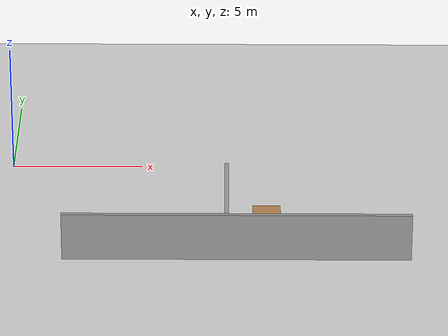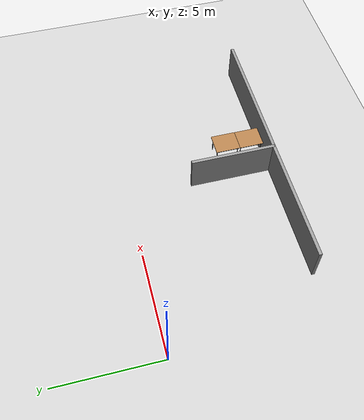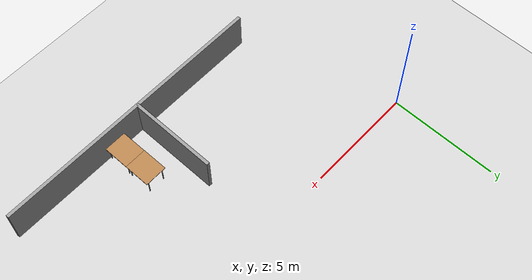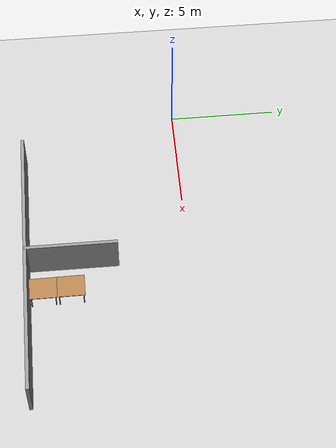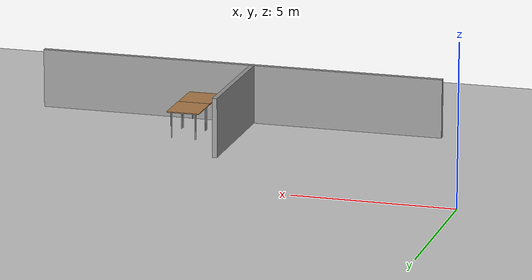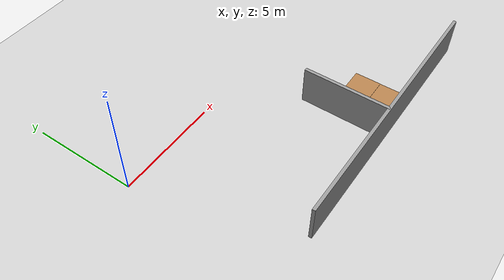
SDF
<sdf version="1.7">
 <world name="default">
  <model name="work_station">
   <link name="link">
    <inertial>
     <inertia><ixx>0</ixx><ixy>0</ixy><ixz>0</ixz><iyy>0</iyy><iyz>0</iyz><izz>0</izz></inertia>
     <mass>0</mass>
    </inertial>
    <visual name="back_right_leg">
     <pose>-0.53 -0.38 0.42 0 -0 0</pose>
     <geometry><cylinder><radius>0.0207459</radius><length>0.822541</length></cylinder></geometry>
     <material>
      <script><uri>file://media/materials/scripts/gazebo.material</uri><name>Gazebo/Grey</name></script>
      <shader type="pixel"><normal_map>__default__</normal_map></shader>
      <ambient>0.3 0.3 0.3 1</ambient>
      <diffuse>0.7 0.7 0.7 1</diffuse>
      <specular>0.01 0.01 0.01 1</specular>
      <emissive>0 0 0 1</emissive>
     </material>
    </visual>
    <visual name="back_left_leg">
     <pose>-0.53 0.38 0.42 0 -0 0</pose>
     <geometry><cylinder><radius>0.0207459</radius><length>0.822541</length></cylinder></geometry>
     <material>
      <script><uri>file://media/materials/scripts/gazebo.material</uri><name>Gazebo/Grey</name></script>
      <shader type="pixel"><normal_map>__default__</normal_map></shader>
      <ambient>0.3 0.3 0.3 1</ambient>
      <diffuse>0.7 0.7 0.7 1</diffuse>
      <specular>0.01 0.01 0.01 1</specular>
      <emissive>0 0 0 1</emissive>
     </material>
    </visual>
    <visual name="front_left_leg">
     <pose>0.53 0.38 0.42 0 -0 0</pose>
     <geometry><cylinder><radius>0.0207459</radius><length>0.822541</length></cylinder></geometry>
     <material>
      <script><uri>file://media/materials/scripts/gazebo.material</uri><name>Gazebo/Grey</name></script>
      <shader type="pixel"><normal_map>__default__</normal_map></shader>
      <ambient>0.3 0.3 0.3 1</ambient>
      <diffuse>0.7 0.7 0.7 1</diffuse>
      <specular>0.01 0.01 0.01 1</specular>
      <emissive>0 0 0 1</emissive>
     </material>
    </visual>
    <visual name="visual1">
     <pose>0 0 0.84 0 -0 0</pose>
     <geometry><box><size>1.21551 1.02942 0.025485</size></box></geometry>
     <material>
      <script><uri>file://media/materials/scripts/gazebo.material</uri><name>Gazebo/Wood</name></script>
      <shader type="pixel"><normal_map>__default__</normal_map></shader>
      <ambient>1 1 1 1</ambient>
      <diffuse>1 1 1 1</diffuse>
      <specular>0.2 0.2 0.2 1</specular>
      <emissive>0 0 0 1</emissive>
     </material>
    </visual>
    <visual name="front_right_leg">
     <pose>0.53 -0.38 0.42 0 -0 0</pose>
     <geometry><cylinder><radius>0.0207459</radius><length>0.822541</length></cylinder></geometry>
     <material>
      <script><uri>file://media/materials/scripts/gazebo.material</uri><name>Gazebo/Grey</name></script>
      <shader type="pixel"><normal_map>__default__</normal_map></shader>
      <ambient>0.3 0.3 0.3 1</ambient>
      <diffuse>0.7 0.7 0.7 1</diffuse>
      <specular>0.01 0.01 0.01 1</specular>
      <emissive>0 0 0 1</emissive>
     </material>
    </visual>
    <collision name="surface">
     <pose>0 0 0.84 0 -0 0</pose>
     <geometry><box><size>1.21551 1.02942 0.025485</size></box></geometry>
     <surface>
      <friction>
       <ode><mu>0.6</mu><mu2>0.6</mu2><fdir1>0 0 0</fdir1><slip1>0</slip1><slip2>0</slip2></ode>
       <torsional>
        <coefficient>1</coefficient>
        <patch_radius>0</patch_radius>
        <surface_radius>0</surface_radius>
        <use_patch_radius>1</use_patch_radius>
        <ode><slip>0</slip></ode>
       </torsional>
      </friction>
      <bounce><restitution_coefficient>0</restitution_coefficient><threshold>1e+06</threshold></bounce>
      <contact>
       <collide_without_contact>0</collide_without_contact>
       <collide_without_contact_bitmask>1</collide_without_contact_bitmask>
       <collide_bitmask>1</collide_bitmask>
       <ode>
        <soft_cfm>0</soft_cfm>
        <soft_erp>0.2</soft_erp>
        <kp>1e+13</kp>
        <kd>1</kd>
        <max_vel>0.01</max_vel>
        <min_depth>0</min_depth>
       </ode>
       <bullet>
        <split_impulse>1</split_impulse>
        <split_impulse_penetration_threshold>-0.01</split_impulse_penetration_threshold>
        <soft_cfm>0</soft_cfm>
        <soft_erp>0.2</soft_erp>
        <kp>1e+13</kp>
        <kd>1</kd>
       </bullet>
      </contact>
     </surface>
    </collision>
    <collision name="front_left_leg">
     <pose>0.53 0.38 0.42 0 -0 0</pose>
     <geometry><cylinder><radius>0.020746</radius><length>0.822541</length></cylinder></geometry>
     <surface>
      <friction>
       <ode><mu>1</mu><mu2>1</mu2><fdir1>0 0 0</fdir1><slip1>0</slip1><slip2>0</slip2></ode>
       <torsional>
        <coefficient>1</coefficient>
        <patch_radius>0</patch_radius>
        <surface_radius>0</surface_radius>
        <use_patch_radius>1</use_patch_radius>
        <ode><slip>0</slip></ode>
       </torsional>
      </friction>
      <bounce><restitution_coefficient>0</restitution_coefficient><threshold>1e+06</threshold></bounce>
      <contact>
       <collide_without_contact>0</collide_without_contact>
       <collide_without_contact_bitmask>1</collide_without_contact_bitmask>
       <collide_bitmask>1</collide_bitmask>
       <ode>
        <soft_cfm>0</soft_cfm>
        <soft_erp>0.2</soft_erp>
        <kp>1e+13</kp>
        <kd>1</kd>
        <max_vel>0.01</max_vel>
        <min_depth>0</min_depth>
       </ode>
       <bullet>
        <split_impulse>1</split_impulse>
        <split_impulse_penetration_threshold>-0.01</split_impulse_penetration_threshold>
        <soft_cfm>0</soft_cfm>
        <soft_erp>0.2</soft_erp>
        <kp>1e+13</kp>
        <kd>1</kd>
       </bullet>
      </contact>
     </surface>
    </collision>
    <collision name="front_right_leg">
     <pose>0.53 -0.38 0.42 0 -0 0</pose>
     <geometry><cylinder><radius>0.020746</radius><length>0.822541</length></cylinder></geometry>
     <surface>
      <friction>
       <ode><mu>1</mu><mu2>1</mu2><fdir1>0 0 0</fdir1><slip1>0</slip1><slip2>0</slip2></ode>
       <torsional>
        <coefficient>1</coefficient>
        <patch_radius>0</patch_radius>
        <surface_radius>0</surface_radius>
        <use_patch_radius>1</use_patch_radius>
        <ode><slip>0</slip></ode>
       </torsional>
      </friction>
      <bounce><restitution_coefficient>0</restitution_coefficient><threshold>1e+06</threshold></bounce>
      <contact>
       <collide_without_contact>0</collide_without_contact>
       <collide_without_contact_bitmask>1</collide_without_contact_bitmask>
       <collide_bitmask>1</collide_bitmask>
       <ode>
        <soft_cfm>0</soft_cfm>
        <soft_erp>0.2</soft_erp>
        <kp>1e+13</kp>
        <kd>1</kd>
        <max_vel>0.01</max_vel>
        <min_depth>0</min_depth>
       </ode>
       <bullet>
        <split_impulse>1</split_impulse>
        <split_impulse_penetration_threshold>-0.01</split_impulse_penetration_threshold>
        <soft_cfm>0</soft_cfm>
        <soft_erp>0.2</soft_erp>
        <kp>1e+13</kp>
        <kd>1</kd>
       </bullet>
      </contact>
     </surface>
    </collision>
    <collision name="back_right_leg">
     <pose>-0.53 -0.38 0.42 0 -0 0</pose>
     <geometry><cylinder><radius>0.020746</radius><length>0.822541</length></cylinder></geometry>
     <surface>
      <friction>
       <ode><mu>1</mu><mu2>1</mu2><fdir1>0 0 0</fdir1><slip1>0</slip1><slip2>0</slip2></ode>
       <torsional>
        <coefficient>1</coefficient>
        <patch_radius>0</patch_radius>
        <surface_radius>0</surface_radius>
        <use_patch_radius>1</use_patch_radius>
        <ode><slip>0</slip></ode>
       </torsional>
      </friction>
      <bounce><restitution_coefficient>0</restitution_coefficient><threshold>1e+06</threshold></bounce>
      <contact>
       <collide_without_contact>0</collide_without_contact>
       <collide_without_contact_bitmask>1</collide_without_contact_bitmask>
       <collide_bitmask>1</collide_bitmask>
       <ode>
        <soft_cfm>0</soft_cfm>
        <soft_erp>0.2</soft_erp>
        <kp>1e+13</kp>
        <kd>1</kd>
        <max_vel>0.01</max_vel>
        <min_depth>0</min_depth>
       </ode>
       <bullet>
        <split_impulse>1</split_impulse>
        <split_impulse_penetration_threshold>-0.01</split_impulse_penetration_threshold>
        <soft_cfm>0</soft_cfm>
        <soft_erp>0.2</soft_erp>
        <kp>1e+13</kp>
        <kd>1</kd>
       </bullet>
      </contact>
     </surface>
    </collision>
    <collision name="back_left_leg">
     <pose>-0.53 0.38 0.42 0 -0 0</pose>
     <geometry><cylinder><radius>0.020746</radius><length>0.822541</length></cylinder></geometry>
     <surface>
      <friction>
       <ode><mu>1</mu><mu2>1</mu2><fdir1>0 0 0</fdir1><slip1>0</slip1><slip2>0</slip2></ode>
       <torsional>
        <coefficient>1</coefficient>
        <patch_radius>0</patch_radius>
        <surface_radius>0</surface_radius>
        <use_patch_radius>1</use_patch_radius>
        <ode><slip>0</slip></ode>
       </torsional>
      </friction>
      <bounce><restitution_coefficient>0</restitution_coefficient><threshold>1e+06</threshold></bounce>
      <contact>
       <collide_without_contact>0</collide_without_contact>
       <collide_without_contact_bitmask>1</collide_without_contact_bitmask>
       <collide_bitmask>1</collide_bitmask>
       <ode>
        <soft_cfm>0</soft_cfm>
        <soft_erp>0.2</soft_erp>
        <kp>1e+13</kp>
        <kd>1</kd>
        <max_vel>0.01</max_vel>
        <min_depth>0</min_depth>
       </ode>
       <bullet>
        <split_impulse>1</split_impulse>
        <split_impulse_penetration_threshold>-0.01</split_impulse_penetration_threshold>
        <soft_cfm>0</soft_cfm>
        <soft_erp>0.2</soft_erp>
        <kp>1e+13</kp>
        <kd>1</kd>
       </bullet>
      </contact>
     </surface>
    </collision>
   </link>
   <static>1</static>
   <pose>9.79017 -6.53361 -0.011225 0 0 -1.56528</pose>
  </model>
  <model name="work_station_clone">
   <link name="link">
    <inertial>
     <inertia><ixx>0</ixx><ixy>0</ixy><ixz>0</ixz><iyy>0</iyy><iyz>0</iyz><izz>0</izz></inertia>
     <mass>0</mass>
    </inertial>
    <visual name="back_right_leg">
     <pose>-0.53 -0.38 0.42 0 -0 0</pose>
     <geometry><cylinder><radius>0.0207459</radius><length>0.822541</length></cylinder></geometry>
     <material>
      <script><uri>file://media/materials/scripts/gazebo.material</uri><name>Gazebo/Grey</name></script>
      <shader type="pixel"><normal_map>__default__</normal_map></shader>
      <ambient>0.3 0.3 0.3 1</ambient>
      <diffuse>0.7 0.7 0.7 1</diffuse>
      <specular>0.01 0.01 0.01 1</specular>
      <emissive>0 0 0 1</emissive>
     </material>
    </visual>
    <visual name="back_left_leg">
     <pose>-0.53 0.38 0.42 0 -0 0</pose>
     <geometry><cylinder><radius>0.0207459</radius><length>0.822541</length></cylinder></geometry>
     <material>
      <script><uri>file://media/materials/scripts/gazebo.material</uri><name>Gazebo/Grey</name></script>
      <shader type="pixel"><normal_map>__default__</normal_map></shader>
      <ambient>0.3 0.3 0.3 1</ambient>
      <diffuse>0.7 0.7 0.7 1</diffuse>
      <specular>0.01 0.01 0.01 1</specular>
      <emissive>0 0 0 1</emissive>
     </material>
    </visual>
    <visual name="front_left_leg">
     <pose>0.53 0.38 0.42 0 -0 0</pose>
     <geometry><cylinder><radius>0.0207459</radius><length>0.822541</length></cylinder></geometry>
     <material>
      <script><uri>file://media/materials/scripts/gazebo.material</uri><name>Gazebo/Grey</name></script>
      <shader type="pixel"><normal_map>__default__</normal_map></shader>
      <ambient>0.3 0.3 0.3 1</ambient>
      <diffuse>0.7 0.7 0.7 1</diffuse>
      <specular>0.01 0.01 0.01 1</specular>
      <emissive>0 0 0 1</emissive>
     </material>
    </visual>
    <visual name="visual1">
     <pose>0 0 0.84 0 -0 0</pose>
     <geometry><box><size>1.21551 1.02942 0.025485</size></box></geometry>
     <material>
      <script><uri>file://media/materials/scripts/gazebo.material</uri><name>Gazebo/Wood</name></script>
      <shader type="pixel"><normal_map>__default__</normal_map></shader>
      <ambient>1 1 1 1</ambient>
      <diffuse>1 1 1 1</diffuse>
      <specular>0.2 0.2 0.2 1</specular>
      <emissive>0 0 0 1</emissive>
     </material>
    </visual>
    <visual name="front_right_leg">
     <pose>0.53 -0.38 0.42 0 -0 0</pose>
     <geometry><cylinder><radius>0.0207459</radius><length>0.822541</length></cylinder></geometry>
     <material>
      <script><uri>file://media/materials/scripts/gazebo.material</uri><name>Gazebo/Grey</name></script>
      <shader type="pixel"><normal_map>__default__</normal_map></shader>
      <ambient>0.3 0.3 0.3 1</ambient>
      <diffuse>0.7 0.7 0.7 1</diffuse>
      <specular>0.01 0.01 0.01 1</specular>
      <emissive>0 0 0 1</emissive>
     </material>
    </visual>
    <collision name="surface">
     <pose>0 0 0.84 0 -0 0</pose>
     <geometry><box><size>1.21551 1.02942 0.025485</size></box></geometry>
     <surface>
      <friction>
       <ode><mu>0.6</mu><mu2>0.6</mu2><fdir1>0 0 0</fdir1><slip1>0</slip1><slip2>0</slip2></ode>
       <torsional>
        <coefficient>1</coefficient>
        <patch_radius>0</patch_radius>
        <surface_radius>0</surface_radius>
        <use_patch_radius>1</use_patch_radius>
        <ode><slip>0</slip></ode>
       </torsional>
      </friction>
      <bounce><restitution_coefficient>0</restitution_coefficient><threshold>1e+06</threshold></bounce>
      <contact>
       <collide_without_contact>0</collide_without_contact>
       <collide_without_contact_bitmask>1</collide_without_contact_bitmask>
       <collide_bitmask>1</collide_bitmask>
       <ode>
        <soft_cfm>0</soft_cfm>
        <soft_erp>0.2</soft_erp>
        <kp>1e+13</kp>
        <kd>1</kd>
        <max_vel>0.01</max_vel>
        <min_depth>0</min_depth>
       </ode>
       <bullet>
        <split_impulse>1</split_impulse>
        <split_impulse_penetration_threshold>-0.01</split_impulse_penetration_threshold>
        <soft_cfm>0</soft_cfm>
        <soft_erp>0.2</soft_erp>
        <kp>1e+13</kp>
        <kd>1</kd>
       </bullet>
      </contact>
     </surface>
    </collision>
    <collision name="front_left_leg">
     <pose>0.53 0.38 0.42 0 -0 0</pose>
     <geometry><cylinder><radius>0.020746</radius><length>0.822541</length></cylinder></geometry>
     <surface>
      <friction>
       <ode><mu>1</mu><mu2>1</mu2><fdir1>0 0 0</fdir1><slip1>0</slip1><slip2>0</slip2></ode>
       <torsional>
        <coefficient>1</coefficient>
        <patch_radius>0</patch_radius>
        <surface_radius>0</surface_radius>
        <use_patch_radius>1</use_patch_radius>
        <ode><slip>0</slip></ode>
       </torsional>
      </friction>
      <bounce><restitution_coefficient>0</restitution_coefficient><threshold>1e+06</threshold></bounce>
      <contact>
       <collide_without_contact>0</collide_without_contact>
       <collide_without_contact_bitmask>1</collide_without_contact_bitmask>
       <collide_bitmask>1</collide_bitmask>
       <ode>
        <soft_cfm>0</soft_cfm>
        <soft_erp>0.2</soft_erp>
        <kp>1e+13</kp>
        <kd>1</kd>
        <max_vel>0.01</max_vel>
        <min_depth>0</min_depth>
       </ode>
       <bullet>
        <split_impulse>1</split_impulse>
        <split_impulse_penetration_threshold>-0.01</split_impulse_penetration_threshold>
        <soft_cfm>0</soft_cfm>
        <soft_erp>0.2</soft_erp>
        <kp>1e+13</kp>
        <kd>1</kd>
       </bullet>
      </contact>
     </surface>
    </collision>
    <collision name="front_right_leg">
     <pose>0.53 -0.38 0.42 0 -0 0</pose>
     <geometry><cylinder><radius>0.020746</radius><length>0.822541</length></cylinder></geometry>
     <surface>
      <friction>
       <ode><mu>1</mu><mu2>1</mu2><fdir1>0 0 0</fdir1><slip1>0</slip1><slip2>0</slip2></ode>
       <torsional>
        <coefficient>1</coefficient>
        <patch_radius>0</patch_radius>
        <surface_radius>0</surface_radius>
        <use_patch_radius>1</use_patch_radius>
        <ode><slip>0</slip></ode>
       </torsional>
      </friction>
      <bounce><restitution_coefficient>0</restitution_coefficient><threshold>1e+06</threshold></bounce>
      <contact>
       <collide_without_contact>0</collide_without_contact>
       <collide_without_contact_bitmask>1</collide_without_contact_bitmask>
       <collide_bitmask>1</collide_bitmask>
       <ode>
        <soft_cfm>0</soft_cfm>
        <soft_erp>0.2</soft_erp>
        <kp>1e+13</kp>
        <kd>1</kd>
        <max_vel>0.01</max_vel>
        <min_depth>0</min_depth>
       </ode>
       <bullet>
        <split_impulse>1</split_impulse>
        <split_impulse_penetration_threshold>-0.01</split_impulse_penetration_threshold>
        <soft_cfm>0</soft_cfm>
        <soft_erp>0.2</soft_erp>
        <kp>1e+13</kp>
        <kd>1</kd>
       </bullet>
      </contact>
     </surface>
    </collision>
    <collision name="back_right_leg">
     <pose>-0.53 -0.38 0.42 0 -0 0</pose>
     <geometry><cylinder><radius>0.020746</radius><length>0.822541</length></cylinder></geometry>
     <surface>
      <friction>
       <ode><mu>1</mu><mu2>1</mu2><fdir1>0 0 0</fdir1><slip1>0</slip1><slip2>0</slip2></ode>
       <torsional>
        <coefficient>1</coefficient>
        <patch_radius>0</patch_radius>
        <surface_radius>0</surface_radius>
        <use_patch_radius>1</use_patch_radius>
        <ode><slip>0</slip></ode>
       </torsional>
      </friction>
      <bounce><restitution_coefficient>0</restitution_coefficient><threshold>1e+06</threshold></bounce>
      <contact>
       <collide_without_contact>0</collide_without_contact>
       <collide_without_contact_bitmask>1</collide_without_contact_bitmask>
       <collide_bitmask>1</collide_bitmask>
       <ode>
        <soft_cfm>0</soft_cfm>
        <soft_erp>0.2</soft_erp>
        <kp>1e+13</kp>
        <kd>1</kd>
        <max_vel>0.01</max_vel>
        <min_depth>0</min_depth>
       </ode>
       <bullet>
        <split_impulse>1</split_impulse>
        <split_impulse_penetration_threshold>-0.01</split_impulse_penetration_threshold>
        <soft_cfm>0</soft_cfm>
        <soft_erp>0.2</soft_erp>
        <kp>1e+13</kp>
        <kd>1</kd>
       </bullet>
      </contact>
     </surface>
    </collision>
    <collision name="back_left_leg">
     <pose>-0.53 0.38 0.42 0 -0 0</pose>
     <geometry><cylinder><radius>0.020746</radius><length>0.822541</length></cylinder></geometry>
     <surface>
      <friction>
       <ode><mu>1</mu><mu2>1</mu2><fdir1>0 0 0</fdir1><slip1>0</slip1><slip2>0</slip2></ode>
       <torsional>
        <coefficient>1</coefficient>
        <patch_radius>0</patch_radius>
        <surface_radius>0</surface_radius>
        <use_patch_radius>1</use_patch_radius>
        <ode><slip>0</slip></ode>
       </torsional>
      </friction>
      <bounce><restitution_coefficient>0</restitution_coefficient><threshold>1e+06</threshold></bounce>
      <contact>
       <collide_without_contact>0</collide_without_contact>
       <collide_without_contact_bitmask>1</collide_without_contact_bitmask>
       <collide_bitmask>1</collide_bitmask>
       <ode>
        <soft_cfm>0</soft_cfm>
        <soft_erp>0.2</soft_erp>
        <kp>1e+13</kp>
        <kd>1</kd>
        <max_vel>0.01</max_vel>
        <min_depth>0</min_depth>
       </ode>
       <bullet>
        <split_impulse>1</split_impulse>
        <split_impulse_penetration_threshold>-0.01</split_impulse_penetration_threshold>
        <soft_cfm>0</soft_cfm>
        <soft_erp>0.2</soft_erp>
        <kp>1e+13</kp>
        <kd>1</kd>
       </bullet>
      </contact>
     </surface>
    </collision>
   </link>
   <static>1</static>
   <pose>9.78194 -5.3185 0 0 0 -1.56528</pose>
  </model>
  <model name="ground_plane">
   <static>1</static>
   <link name="link">
    <collision name="collision">
     <geometry><plane><normal>0 0 1</normal><size>100 100</size></plane></geometry>
     <surface>
      <contact><collide_bitmask>65535</collide_bitmask></contact>
      <friction><ode><mu>100</mu><mu2>50</mu2></ode></friction>
     </surface>
    </collision>
    <visual name="visual">
     <cast_shadows>0</cast_shadows>
     <geometry><plane><normal>0 0 1</normal><size>100 100</size></plane></geometry>
     <material>
      <script><uri>file://media/materials/scripts/gazebo.material</uri><name>Gazebo/Grey</name></script>
     </material>
    </visual>
   </link>
  </model>
  <model name="HQ_0">
   <link name="Wall_142">
    <pose>8.22923 -5.21005 0 0 -0 1.5708</pose>
    <visual name="Wall_142_Visual">
     <pose>0 0 1.25 0 -0 0</pose>
     <geometry><box><size>4.0945 0.15 2</size></box></geometry>
     <material>
      <script><uri>file://media/materials/scripts/gazebo.material</uri><name>Gazebo/Grey</name></script>
      <ambient>1 1 1 1</ambient>
      <shader type="pixel"/>
     </material>
     <meta><layer>0</layer></meta>
    </visual>
    <collision name="Wall_142_Collision">
     <pose>0 0 1.25 0 -0 0</pose>
     <geometry><box><size>4.0945 0.15 2</size></box></geometry>
     <surface>
      <friction>
       <ode><mu>1</mu><mu2>1</mu2><fdir1>0 0 0</fdir1><slip1>0</slip1><slip2>0</slip2></ode>
       <torsional>
        <coefficient>1</coefficient>
        <patch_radius>0</patch_radius>
        <surface_radius>0</surface_radius>
        <use_patch_radius>1</use_patch_radius>
        <ode><slip>0</slip></ode>
       </torsional>
      </friction>
      <bounce><restitution_coefficient>0</restitution_coefficient><threshold>1e+06</threshold></bounce>
      <contact>
       <collide_without_contact>0</collide_without_contact>
       <collide_without_contact_bitmask>1</collide_without_contact_bitmask>
       <collide_bitmask>1</collide_bitmask>
       <ode>
        <soft_cfm>0</soft_cfm>
        <soft_erp>0.2</soft_erp>
        <kp>1e+13</kp>
        <kd>1</kd>
        <max_vel>0.01</max_vel>
        <min_depth>0</min_depth>
       </ode>
       <bullet>
        <split_impulse>1</split_impulse>
        <split_impulse_penetration_threshold>-0.01</split_impulse_penetration_threshold>
        <soft_cfm>0</soft_cfm>
        <soft_erp>0.2</soft_erp>
        <kp>1e+13</kp>
        <kd>1</kd>
       </bullet>
      </contact>
     </surface>
    </collision>
   </link>
   <link name="Wall_17">
    <pose>8.60126 -7.2205 0 0 0 -3.1412</pose>
    <visual name="Wall_17_Visual">
     <pose>0 0 1.25 0 -0 0</pose>
     <geometry><box><size>12.8702 0.15 2</size></box></geometry>
     <material>
      <script><uri>file://media/materials/scripts/gazebo.material</uri><name>Gazebo/Grey</name></script>
      <ambient>1 1 1 1</ambient>
      <shader type="pixel"/>
     </material>
     <meta><layer>0</layer></meta>
    </visual>
    <collision name="Wall_17_Collision">
     <pose>0 0 1.25 0 -0 0</pose>
     <geometry><box><size>12.8702 0.15 2</size></box></geometry>
     <surface>
      <friction>
       <ode><mu>1</mu><mu2>1</mu2><fdir1>0 0 0</fdir1><slip1>0</slip1><slip2>0</slip2></ode>
       <torsional>
        <coefficient>1</coefficient>
        <patch_radius>0</patch_radius>
        <surface_radius>0</surface_radius>
        <use_patch_radius>1</use_patch_radius>
        <ode><slip>0</slip></ode>
       </torsional>
      </friction>
      <bounce><restitution_coefficient>0</restitution_coefficient><threshold>1e+06</threshold></bounce>
      <contact>
       <collide_without_contact>0</collide_without_contact>
       <collide_without_contact_bitmask>1</collide_without_contact_bitmask>
       <collide_bitmask>1</collide_bitmask>
       <ode>
        <soft_cfm>0</soft_cfm>
        <soft_erp>0.2</soft_erp>
        <kp>1e+13</kp>
        <kd>1</kd>
        <max_vel>0.01</max_vel>
        <min_depth>0</min_depth>
       </ode>
       <bullet>
        <split_impulse>1</split_impulse>
        <split_impulse_penetration_threshold>-0.01</split_impulse_penetration_threshold>
        <soft_cfm>0</soft_cfm>
        <soft_erp>0.2</soft_erp>
        <kp>1e+13</kp>
        <kd>1</kd>
       </bullet>
      </contact>
     </surface>
    </collision>
   </link>
   <static>1</static>
   <pose>0.058415 0.010329 -0.412364 0 -0 0</pose>
  </model>
 </world>
</sdf>
